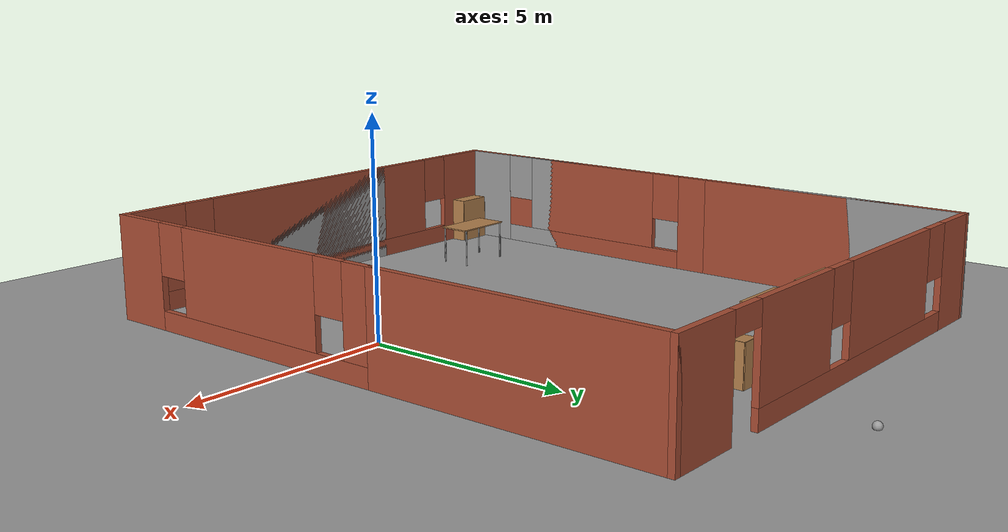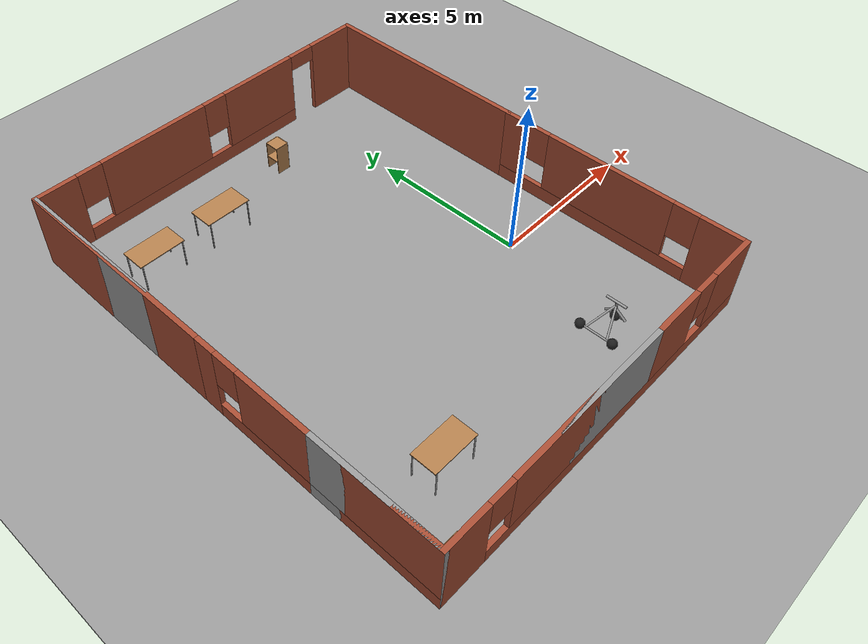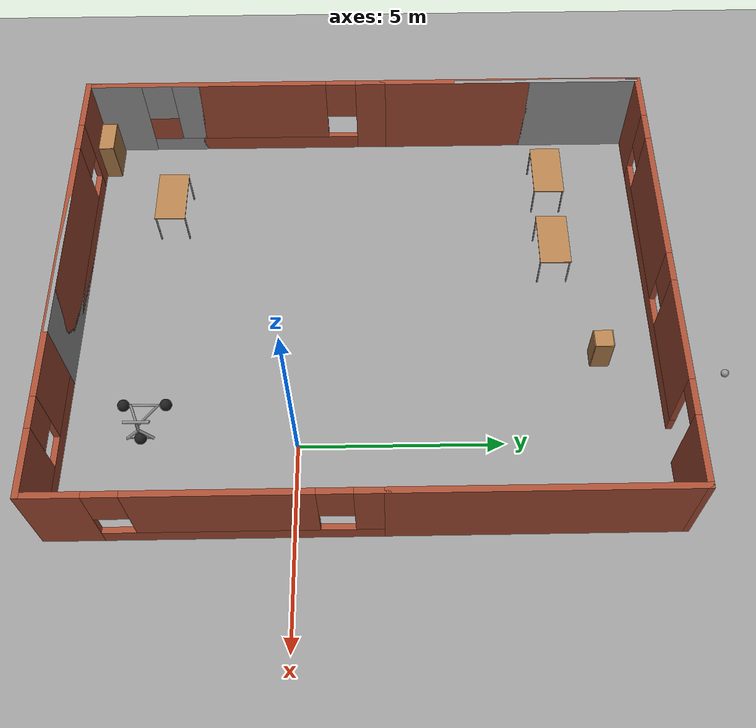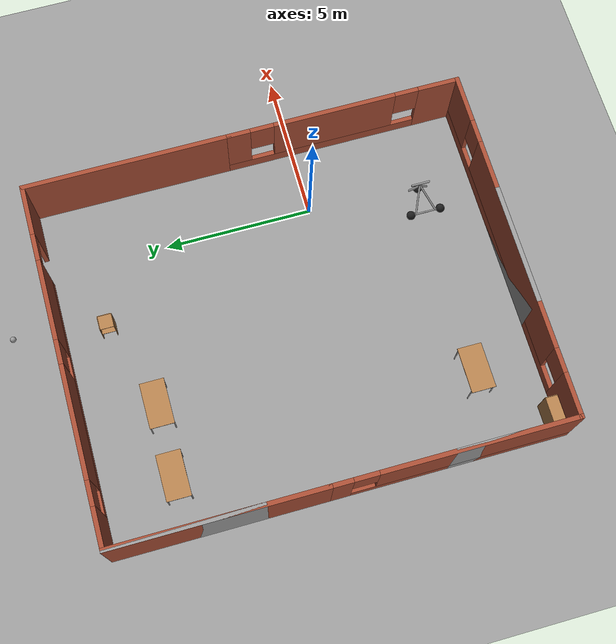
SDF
<sdf version="1.6">
 <world name="default">
  <plugin name="hello" filename="libhello.so"/>
  <light name="sun" type="directional">
   <pose>0 0 10 0 -0 0</pose>
   <diffuse>0.8 0.8 0.8 1</diffuse>
   <specular>0.2 0.2 0.2 1</specular>
   <attenuation>
    <range>1000</range>
    <constant>0.9</constant>
    <linear>0.01</linear>
    <quadratic>0.001</quadratic>
   </attenuation>
   <direction>-0.5 0.1 -0.9</direction>
  </light>
  <model name="ground_plane">
   <static>1</static>
   <link name="link">
    <collision name="collision">
     <geometry><plane><normal>0 0 1</normal><size>100 100</size></plane></geometry>
     <surface>
      <contact><collide_bitmask>65535</collide_bitmask></contact>
      <friction><ode><mu>100</mu><mu2>50</mu2></ode></friction>
     </surface>
    </collision>
    <visual name="visual">
     <cast_shadows>0</cast_shadows>
     <geometry><plane><normal>0 0 1</normal><size>100 100</size></plane></geometry>
     <material>
      <script><uri>file://media/materials/scripts/gazebo.material</uri><name>Gazebo/Grey</name></script>
     </material>
    </visual>
   </link>
  </model>
  <gravity>0 0 -9.8</gravity>
  <magnetic_field>6e-06 2.3e-05 -4.2e-05</magnetic_field>
  <atmosphere type="adiabatic"/>
  <physics name="default_physics" default="0" type="ode">
   <max_step_size>0.001</max_step_size>
   <real_time_factor>1</real_time_factor>
   <real_time_update_rate>1000</real_time_update_rate>
  </physics>
  <scene><ambient>0.4 0.4 0.4 1</ambient><background>0.7 0.7 0.7 1</background><shadows>1</shadows></scene>
  <spherical_coordinates>
   <surface_model>EARTH_WGS84</surface_model>
   <latitude_deg>0</latitude_deg>
   <longitude_deg>0</longitude_deg>
   <elevation>0</elevation>
   <heading_deg>0</heading_deg>
  </spherical_coordinates>
  <model name="Building">
   <pose>-3.67129 1.65628 0 0 -0 0</pose>
   <link name="Wall_0">
    <pose>-5.925 -3.425 0 0 0 -1.5708</pose>
    <visual name="Wall_0_Visual_0">
     <pose>-3.59975 0 1.25 0 -0 0</pose>
     <geometry><box><size>0.800507 0.15 2.5</size></box></geometry>
     <material>
      <script><uri>file://media/materials/scripts/gazebo.material</uri><name>Gazebo/Bricks</name></script>
      <ambient>1 1 1 1</ambient>
     </material>
     <meta><layer>0</layer></meta>
    </visual>
    <collision name="Wall_0_Collision_0">
     <geometry><box><size>0.800507 0.15 2.5</size></box></geometry>
     <pose>-3.59975 0 1.25 0 -0 0</pose>
    </collision>
    <visual name="Wall_0_Visual_1">
     <pose>0.400254 0 0.25 0 -0 0</pose>
     <geometry><box><size>7.19949 0.15 0.5</size></box></geometry>
     <material>
      <script><uri>file://media/materials/scripts/gazebo.material</uri><name>Gazebo/Bricks</name></script>
      <ambient>1 1 1 1</ambient>
     </material>
     <meta><layer>0</layer></meta>
    </visual>
    <collision name="Wall_0_Collision_1">
     <geometry><box><size>7.19949 0.15 0.5</size></box></geometry>
     <pose>0.400254 0 0.25 0 -0 0</pose>
    </collision>
    <visual name="Wall_0_Visual_2">
     <pose>0.800254 0 1.5 0 -0 0</pose>
     <geometry><box><size>6.39949 0.15 2</size></box></geometry>
     <material>
      <script><uri>file://media/materials/scripts/gazebo.material</uri><name>Gazebo/Bricks</name></script>
      <ambient>1 1 1 1</ambient>
     </material>
     <meta><layer>0</layer></meta>
    </visual>
    <collision name="Wall_0_Collision_2">
     <geometry><box><size>6.39949 0.15 2</size></box></geometry>
     <pose>0.800254 0 1.5 0 -0 0</pose>
    </collision>
    <visual name="Wall_0_Visual_3">
     <pose>-2.79949 0 1.9 0 -0 0</pose>
     <geometry><box><size>0.8 0.15 1.2</size></box></geometry>
     <material>
      <script><uri>file://media/materials/scripts/gazebo.material</uri><name>Gazebo/Bricks</name></script>
      <ambient>1 1 1 1</ambient>
     </material>
     <meta><layer>0</layer></meta>
    </visual>
    <collision name="Wall_0_Collision_3">
     <geometry><box><size>0.8 0.15 1.2</size></box></geometry>
     <pose>-2.79949 0 1.9 0 -0 0</pose>
    </collision>
   </link>
   <link name="Wall_1">
    <pose>0 -7.35 0 0 -0 0</pose>
    <visual name="Wall_1_Visual_0">
     <pose>-5.25471 0 1.25 0 -0 0</pose>
     <geometry><box><size>1.49059 0.15 2.5</size></box></geometry>
     <material>
      <script><uri>file://media/materials/scripts/gazebo.material</uri><name>Gazebo/Bricks</name></script>
      <ambient>1 1 1 1</ambient>
     </material>
     <meta><layer>0</layer></meta>
    </visual>
    <collision name="Wall_1_Collision_0">
     <geometry><box><size>1.49059 0.15 2.5</size></box></geometry>
     <pose>-5.25471 0 1.25 0 -0 0</pose>
    </collision>
    <visual name="Wall_1_Visual_1">
     <pose>0.745295 0 0.25 0 -0 0</pose>
     <geometry><box><size>10.5094 0.15 0.5</size></box></geometry>
     <material>
      <script><uri>file://media/materials/scripts/gazebo.material</uri><name>Gazebo/Bricks</name></script>
      <ambient>1 1 1 1</ambient>
     </material>
     <meta><layer>0</layer></meta>
    </visual>
    <collision name="Wall_1_Collision_1">
     <geometry><box><size>10.5094 0.15 0.5</size></box></geometry>
     <pose>0.745295 0 0.25 0 -0 0</pose>
    </collision>
    <visual name="Wall_1_Visual_2">
     <pose>-0.084684 0 1.5 0 -0 0</pose>
     <geometry><box><size>7.24945 0.15 2</size></box></geometry>
     <material>
      <script><uri>file://media/materials/scripts/gazebo.material</uri><name>Gazebo/Bricks</name></script>
      <ambient>1 1 1 1</ambient>
     </material>
     <meta><layer>0</layer></meta>
    </visual>
    <collision name="Wall_1_Collision_2">
     <geometry><box><size>7.24945 0.15 2</size></box></geometry>
     <pose>-0.084684 0 1.5 0 -0 0</pose>
    </collision>
    <visual name="Wall_1_Visual_3">
     <pose>5.17002 0 1.5 0 -0 0</pose>
     <geometry><box><size>1.65996 0.15 2</size></box></geometry>
     <material>
      <script><uri>file://media/materials/scripts/gazebo.material</uri><name>Gazebo/Bricks</name></script>
      <ambient>1 1 1 1</ambient>
     </material>
     <meta><layer>0</layer></meta>
    </visual>
    <collision name="Wall_1_Collision_3">
     <geometry><box><size>1.65996 0.15 2</size></box></geometry>
     <pose>5.17002 0 1.5 0 -0 0</pose>
    </collision>
    <visual name="Wall_1_Visual_4">
     <pose>-4.10941 0 1.9 0 -0 0</pose>
     <geometry><box><size>0.8 0.15 1.2</size></box></geometry>
     <material>
      <script><uri>file://media/materials/scripts/gazebo.material</uri><name>Gazebo/Bricks</name></script>
      <ambient>1 1 1 1</ambient>
     </material>
     <meta><layer>0</layer></meta>
    </visual>
    <collision name="Wall_1_Collision_4">
     <geometry><box><size>0.8 0.15 1.2</size></box></geometry>
     <pose>-4.10941 0 1.9 0 -0 0</pose>
    </collision>
    <visual name="Wall_1_Visual_5">
     <pose>3.94004 0 1.9 0 -0 0</pose>
     <geometry><box><size>0.8 0.15 1.2</size></box></geometry>
     <material>
      <script><uri>file://media/materials/scripts/gazebo.material</uri><name>Gazebo/Bricks</name></script>
      <ambient>1 1 1 1</ambient>
     </material>
     <meta><layer>0</layer></meta>
    </visual>
    <collision name="Wall_1_Collision_5">
     <geometry><box><size>0.8 0.15 1.2</size></box></geometry>
     <pose>3.94004 0 1.9 0 -0 0</pose>
    </collision>
   </link>
   <link name="Wall_16">
    <collision name="Wall_16_Collision">
     <geometry><box><size>7 0.15 2.5</size></box></geometry>
     <pose>0 0 1.25 0 -0 0</pose>
    </collision>
    <visual name="Wall_16_Visual">
     <pose>0 0 1.25 0 -0 0</pose>
     <geometry><box><size>7 0.15 2.5</size></box></geometry>
     <material>
      <script><uri>file://media/materials/scripts/gazebo.material</uri><name>Gazebo/Bricks</name></script>
      <ambient>1 1 1 1</ambient>
     </material>
     <meta><layer>0</layer></meta>
    </visual>
    <pose>-5.925 3.925 0 0 -0 1.5708</pose>
   </link>
   <link name="Wall_18">
    <collision name="Wall_18_Collision">
     <geometry><box><size>7 0.15 2.5</size></box></geometry>
     <pose>0 0 1.25 0 -0 0</pose>
    </collision>
    <visual name="Wall_18_Visual">
     <pose>0 0 1.25 0 -0 0</pose>
     <geometry><box><size>7 0.15 2.5</size></box></geometry>
     <material>
      <script><uri>file://media/materials/scripts/gazebo.material</uri><name>Gazebo/Bricks</name></script>
      <ambient>1 1 1 1</ambient>
     </material>
     <meta><layer>0</layer></meta>
    </visual>
    <pose>5.925 3.925 0 0 -0 1.5708</pose>
   </link>
   <link name="Wall_2">
    <pose>5.925 -3.425 0 0 -0 1.5708</pose>
    <visual name="Wall_2_Visual_0">
     <pose>-3.27914 0 1.25 0 -0 0</pose>
     <geometry><box><size>1.44172 0.15 2.5</size></box></geometry>
     <material>
      <script><uri>file://media/materials/scripts/gazebo.material</uri><name>Gazebo/Bricks</name></script>
      <ambient>1 1 1 1</ambient>
     </material>
     <meta><layer>0</layer></meta>
    </visual>
    <collision name="Wall_2_Collision_0">
     <geometry><box><size>1.44172 0.15 2.5</size></box></geometry>
     <pose>-3.27914 0 1.25 0 -0 0</pose>
    </collision>
    <visual name="Wall_2_Visual_1">
     <pose>0.720861 0 0.25 0 -0 0</pose>
     <geometry><box><size>6.55828 0.15 0.5</size></box></geometry>
     <material>
      <script><uri>file://media/materials/scripts/gazebo.material</uri><name>Gazebo/Bricks</name></script>
      <ambient>1 1 1 1</ambient>
     </material>
     <meta><layer>0</layer></meta>
    </visual>
    <collision name="Wall_2_Collision_1">
     <geometry><box><size>6.55828 0.15 0.5</size></box></geometry>
     <pose>0.720861 0 0.25 0 -0 0</pose>
    </collision>
    <visual name="Wall_2_Visual_2">
     <pose>0.320608 0 1.5 0 -0 0</pose>
     <geometry><box><size>4.15777 0.15 2</size></box></geometry>
     <material>
      <script><uri>file://media/materials/scripts/gazebo.material</uri><name>Gazebo/Bricks</name></script>
      <ambient>1 1 1 1</ambient>
     </material>
     <meta><layer>0</layer></meta>
    </visual>
    <collision name="Wall_2_Collision_2">
     <geometry><box><size>4.15777 0.15 2</size></box></geometry>
     <pose>0.320608 0 1.5 0 -0 0</pose>
    </collision>
    <visual name="Wall_2_Visual_3">
     <pose>3.59975 0 1.5 0 -0 0</pose>
     <geometry><box><size>0.800507 0.15 2</size></box></geometry>
     <material>
      <script><uri>file://media/materials/scripts/gazebo.material</uri><name>Gazebo/Bricks</name></script>
      <ambient>1 1 1 1</ambient>
     </material>
     <meta><layer>0</layer></meta>
    </visual>
    <collision name="Wall_2_Collision_3">
     <geometry><box><size>0.800507 0.15 2</size></box></geometry>
     <pose>3.59975 0 1.5 0 -0 0</pose>
    </collision>
    <visual name="Wall_2_Visual_4">
     <pose>-2.15828 0 1.9 0 -0 0</pose>
     <geometry><box><size>0.8 0.15 1.2</size></box></geometry>
     <material>
      <script><uri>file://media/materials/scripts/gazebo.material</uri><name>Gazebo/Bricks</name></script>
      <ambient>1 1 1 1</ambient>
     </material>
     <meta><layer>0</layer></meta>
    </visual>
    <collision name="Wall_2_Collision_4">
     <geometry><box><size>0.8 0.15 1.2</size></box></geometry>
     <pose>-2.15828 0 1.9 0 -0 0</pose>
    </collision>
    <visual name="Wall_2_Visual_5">
     <pose>2.79949 0 1.9 0 -0 0</pose>
     <geometry><box><size>0.8 0.15 1.2</size></box></geometry>
     <material>
      <script><uri>file://media/materials/scripts/gazebo.material</uri><name>Gazebo/Bricks</name></script>
      <ambient>1 1 1 1</ambient>
     </material>
     <meta><layer>0</layer></meta>
    </visual>
    <collision name="Wall_2_Collision_5">
     <geometry><box><size>0.8 0.15 1.2</size></box></geometry>
     <pose>2.79949 0 1.9 0 -0 0</pose>
    </collision>
   </link>
   <link name="Wall_20">
    <pose>0 7.35 0 0 -0 0</pose>
    <visual name="Wall_20_Visual_0">
     <pose>-5.31223 0 1.25 0 -0 0</pose>
     <geometry><box><size>1.37554 0.15 2.5</size></box></geometry>
     <material>
      <script><uri>file://media/materials/scripts/gazebo.material</uri><name>Gazebo/Bricks</name></script>
      <ambient>1 1 1 1</ambient>
     </material>
     <meta><layer>0</layer></meta>
    </visual>
    <collision name="Wall_20_Collision_0">
     <geometry><box><size>1.37554 0.15 2.5</size></box></geometry>
     <pose>-5.31223 0 1.25 0 -0 0</pose>
    </collision>
    <visual name="Wall_20_Visual_1">
     <pose>5.12315 0 1.25 0 -0 0</pose>
     <geometry><box><size>1.7537 0.15 2.5</size></box></geometry>
     <material>
      <script><uri>file://media/materials/scripts/gazebo.material</uri><name>Gazebo/Bricks</name></script>
      <ambient>1 1 1 1</ambient>
     </material>
     <meta><layer>0</layer></meta>
    </visual>
    <collision name="Wall_20_Collision_1">
     <geometry><box><size>1.7537 0.15 2.5</size></box></geometry>
     <pose>5.12315 0 1.25 0 -0 0</pose>
    </collision>
    <visual name="Wall_20_Visual_2">
     <pose>-0.639081 0 0.25 0 -0 0</pose>
     <geometry><box><size>7.97076 0.15 0.5</size></box></geometry>
     <material>
      <script><uri>file://media/materials/scripts/gazebo.material</uri><name>Gazebo/Bricks</name></script>
      <ambient>1 1 1 1</ambient>
     </material>
     <meta><layer>0</layer></meta>
    </visual>
    <collision name="Wall_20_Collision_2">
     <geometry><box><size>7.97076 0.15 0.5</size></box></geometry>
     <pose>-0.639081 0 0.25 0 -0 0</pose>
    </collision>
    <visual name="Wall_20_Visual_3">
     <pose>-1.99061 0 1.5 0 -0 0</pose>
     <geometry><box><size>3.6677 0.15 2</size></box></geometry>
     <material>
      <script><uri>file://media/materials/scripts/gazebo.material</uri><name>Gazebo/Bricks</name></script>
      <ambient>1 1 1 1</ambient>
     </material>
     <meta><layer>0</layer></meta>
    </visual>
    <collision name="Wall_20_Collision_3">
     <geometry><box><size>3.6677 0.15 2</size></box></geometry>
     <pose>-1.99061 0 1.5 0 -0 0</pose>
    </collision>
    <visual name="Wall_20_Visual_4">
     <pose>1.99477 0 1.5 0 -0 0</pose>
     <geometry><box><size>2.70305 0.15 2</size></box></geometry>
     <material>
      <script><uri>file://media/materials/scripts/gazebo.material</uri><name>Gazebo/Bricks</name></script>
      <ambient>1 1 1 1</ambient>
     </material>
     <meta><layer>0</layer></meta>
    </visual>
    <collision name="Wall_20_Collision_4">
     <geometry><box><size>2.70305 0.15 2</size></box></geometry>
     <pose>1.99477 0 1.5 0 -0 0</pose>
    </collision>
    <visual name="Wall_20_Visual_5">
     <pose>-4.22446 0 1.9 0 -0 0</pose>
     <geometry><box><size>0.8 0.15 1.2</size></box></geometry>
     <material>
      <script><uri>file://media/materials/scripts/gazebo.material</uri><name>Gazebo/Bricks</name></script>
      <ambient>1 1 1 1</ambient>
     </material>
     <meta><layer>0</layer></meta>
    </visual>
    <collision name="Wall_20_Collision_5">
     <geometry><box><size>0.8 0.15 1.2</size></box></geometry>
     <pose>-4.22446 0 1.9 0 -0 0</pose>
    </collision>
    <visual name="Wall_20_Visual_6">
     <pose>0.243243 0 1.9 0 -0 0</pose>
     <geometry><box><size>0.8 0.15 1.2</size></box></geometry>
     <material>
      <script><uri>file://media/materials/scripts/gazebo.material</uri><name>Gazebo/Bricks</name></script>
      <ambient>1 1 1 1</ambient>
     </material>
     <meta><layer>0</layer></meta>
    </visual>
    <collision name="Wall_20_Collision_6">
     <geometry><box><size>0.8 0.15 1.2</size></box></geometry>
     <pose>0.243243 0 1.9 0 -0 0</pose>
    </collision>
    <visual name="Wall_20_Visual_7">
     <pose>3.7963 0 2.25 0 -0 0</pose>
     <geometry><box><size>0.9 0.15 0.5</size></box></geometry>
     <material>
      <script><uri>file://media/materials/scripts/gazebo.material</uri><name>Gazebo/Bricks</name></script>
      <ambient>1 1 1 1</ambient>
     </material>
     <meta><layer>0</layer></meta>
    </visual>
    <collision name="Wall_20_Collision_7">
     <geometry><box><size>0.9 0.15 0.5</size></box></geometry>
     <pose>3.7963 0 2.25 0 -0 0</pose>
    </collision>
   </link>
   <link name="Wall_22">
    <collision name="Wall_22_Collision">
     <geometry><box><size>5 0.15 2.5</size></box></geometry>
     <pose>0 0 1.25 0 -0 0</pose>
    </collision>
    <visual name="Wall_22_Visual">
     <pose>0 0 1.25 0 -0 0</pose>
     <geometry><box><size>5 0.15 2.5</size></box></geometry>
     <material>
      <script><uri>file://media/materials/scripts/gazebo.material</uri><name>Gazebo/Grey</name></script>
      <ambient>1 1 1 1</ambient>
     </material>
     <meta><layer>0</layer></meta>
    </visual>
    <pose>-5.925 4.925 0 0 0 -1.5708</pose>
   </link>
   <link name="Wall_5">
    <pose>-5.925 -5.425 0 0 -0 1.5708</pose>
    <visual name="Wall_5_Visual_0">
     <pose>-1.25601 0 1.25 0 -0 0</pose>
     <geometry><box><size>1.48798 0.15 2.5</size></box></geometry>
     <material>
      <script><uri>file://media/materials/scripts/gazebo.material</uri><name>Gazebo/Grey</name></script>
      <ambient>1 1 1 1</ambient>
     </material>
     <meta><layer>0</layer></meta>
    </visual>
    <collision name="Wall_5_Collision_0">
     <geometry><box><size>1.48798 0.15 2.5</size></box></geometry>
     <pose>-1.25601 0 1.25 0 -0 0</pose>
    </collision>
    <visual name="Wall_5_Visual_1">
     <pose>0.743992 0 0.25 0 -0 0</pose>
     <geometry><box><size>2.51202 0.15 0.5</size></box></geometry>
     <material>
      <script><uri>file://media/materials/scripts/gazebo.material</uri><name>Gazebo/Grey</name></script>
      <ambient>1 1 1 1</ambient>
     </material>
     <meta><layer>0</layer></meta>
    </visual>
    <collision name="Wall_5_Collision_1">
     <geometry><box><size>2.51202 0.15 0.5</size></box></geometry>
     <pose>0.743992 0 0.25 0 -0 0</pose>
    </collision>
    <visual name="Wall_5_Visual_2">
     <pose>1.14399 0 1.5 0 -0 0</pose>
     <geometry><box><size>1.71202 0.15 2</size></box></geometry>
     <material>
      <script><uri>file://media/materials/scripts/gazebo.material</uri><name>Gazebo/Grey</name></script>
      <ambient>1 1 1 1</ambient>
     </material>
     <meta><layer>0</layer></meta>
    </visual>
    <collision name="Wall_5_Collision_2">
     <geometry><box><size>1.71202 0.15 2</size></box></geometry>
     <pose>1.14399 0 1.5 0 -0 0</pose>
    </collision>
    <visual name="Wall_5_Visual_3">
     <pose>-0.112016 0 1.9 0 -0 0</pose>
     <geometry><box><size>0.8 0.15 1.2</size></box></geometry>
     <material>
      <script><uri>file://media/materials/scripts/gazebo.material</uri><name>Gazebo/Grey</name></script>
      <ambient>1 1 1 1</ambient>
     </material>
     <meta><layer>0</layer></meta>
    </visual>
    <collision name="Wall_5_Collision_3">
     <geometry><box><size>0.8 0.15 1.2</size></box></geometry>
     <pose>-0.112016 0 1.9 0 -0 0</pose>
    </collision>
   </link>
   <link name="Wall_8">
    <collision name="Wall_8_Collision">
     <geometry><box><size>4 0.15 2.5</size></box></geometry>
     <pose>0 0 1.25 0 -0 0</pose>
    </collision>
    <visual name="Wall_8_Visual">
     <pose>0 0 1.25 0 -0 0</pose>
     <geometry><box><size>4 0.15 2.5</size></box></geometry>
     <material>
      <script><uri>file://media/materials/scripts/gazebo.material</uri><name>Gazebo/Grey</name></script>
      <ambient>1 1 1 1</ambient>
     </material>
     <meta><layer>0</layer></meta>
    </visual>
    <pose>-0.15 -7.35 0 0 -0 0</pose>
   </link>
   <static>1</static>
  </model>
  <model name="cabinet">
   <static>1</static>
   <link name="cabinet_bottom_plate">
    <inertial>
     <pose>0 0 -1 0 -0 0</pose>
     <inertia><ixx>2.05</ixx><ixy>0</ixy><ixz>0</ixz><iyy>2.05</iyy><iyz>0</iyz><izz>2.05</izz></inertia>
     <mass>25</mass>
    </inertial>
    <collision name="cabinet_bottom_plate_geom">
     <pose>0 0 0.01 0 -0 0</pose>
     <geometry><box><size>0.45 0.45 0.02</size></box></geometry>
    </collision>
    <visual name="cabinet_bottom_plate_geom_visual">
     <pose>0 0 0.01 0 -0 0</pose>
     <geometry><box><size>0.45 0.45 0.02</size></box></geometry>
     <material>
      <script><uri>file://media/materials/scripts/gazebo.material</uri><name>Gazebo/Wood</name></script>
     </material>
    </visual>
    <collision name="cabinet_bottom_plate_geom_cabinet_back_plate">
     <pose>0.235 0 0.51 0 -0 0</pose>
     <geometry><box><size>0.02 0.45 1.02</size></box></geometry>
    </collision>
    <visual name="cabinet_bottom_plate_geom_cabinet_back_plate_visual">
     <pose>0.235 0 0.51 0 -0 0</pose>
     <geometry><box><size>0.02 0.45 1.02</size></box></geometry>
     <material>
      <script><uri>file://media/materials/scripts/gazebo.material</uri><name>Gazebo/Wood</name></script>
     </material>
    </visual>
    <collision name="cabinet_bottom_plate_geom_cabinet_left_plate">
     <pose>0 0.235 0.51 0 -0 0</pose>
     <geometry><box><size>0.45 0.02 1.02</size></box></geometry>
    </collision>
    <visual name="cabinet_bottom_plate_geom_cabinet_left_plate_visual">
     <pose>0 0.235 0.51 0 -0 0</pose>
     <geometry><box><size>0.45 0.02 1.02</size></box></geometry>
     <material>
      <script><uri>file://media/materials/scripts/gazebo.material</uri><name>Gazebo/Wood</name></script>
     </material>
    </visual>
    <collision name="cabinet_bottom_plate_geom_cabinet_middle_plate">
     <pose>0 0 0.51 0 -0 0</pose>
     <geometry><box><size>0.45 0.45 0.02</size></box></geometry>
    </collision>
    <visual name="cabinet_bottom_plate_geom_cabinet_middle_plate_visual">
     <pose>0 0 0.51 0 -0 0</pose>
     <geometry><box><size>0.45 0.45 0.02</size></box></geometry>
     <material>
      <script><uri>file://media/materials/scripts/gazebo.material</uri><name>Gazebo/Wood</name></script>
     </material>
    </visual>
    <collision name="cabinet_bottom_plate_geom_cabinet_right_plate">
     <pose>0 -0.235 0.51 0 -0 0</pose>
     <geometry><box><size>0.45 0.02 1.02</size></box></geometry>
    </collision>
    <visual name="cabinet_bottom_plate_geom_cabinet_right_plate_visual">
     <pose>0 -0.235 0.51 0 -0 0</pose>
     <geometry><box><size>0.45 0.02 1.02</size></box></geometry>
     <material>
      <script><uri>file://media/materials/scripts/gazebo.material</uri><name>Gazebo/Wood</name></script>
     </material>
    </visual>
    <collision name="cabinet_bottom_plate_geom_cabinet_top_plate">
     <pose>0 0 1.01 0 -0 0</pose>
     <geometry><box><size>0.45 0.45 0.02</size></box></geometry>
    </collision>
    <visual name="cabinet_bottom_plate_geom_cabinet_top_plate_visual">
     <pose>0 0 1.01 0 -0 0</pose>
     <geometry><box><size>0.45 0.45 0.02</size></box></geometry>
     <material>
      <script><uri>file://media/materials/scripts/gazebo.material</uri><name>Gazebo/Wood</name></script>
     </material>
    </visual>
   </link>
   <pose>-2.35508 7.51328 0 0 -0 0</pose>
  </model>
  <model name="table">
   <static>1</static>
   <link name="link">
    <collision name="surface">
     <pose>0 0 1 0 -0 0</pose>
     <geometry><box><size>1.5 0.8 0.03</size></box></geometry>
     <surface><friction><ode><mu>0.6</mu><mu2>0.6</mu2></ode></friction></surface>
    </collision>
    <visual name="visual1">
     <pose>0 0 1 0 -0 0</pose>
     <geometry><box><size>1.5 0.8 0.03</size></box></geometry>
     <material>
      <script><uri>file://media/materials/scripts/gazebo.material</uri><name>Gazebo/Wood</name></script>
     </material>
    </visual>
    <collision name="front_left_leg">
     <pose>0.68 0.38 0.5 0 -0 0</pose>
     <geometry><cylinder><radius>0.02</radius><length>1</length></cylinder></geometry>
    </collision>
    <visual name="front_left_leg">
     <pose>0.68 0.38 0.5 0 -0 0</pose>
     <geometry><cylinder><radius>0.02</radius><length>1</length></cylinder></geometry>
     <material>
      <script><uri>file://media/materials/scripts/gazebo.material</uri><name>Gazebo/Grey</name></script>
     </material>
    </visual>
    <collision name="front_right_leg">
     <pose>0.68 -0.38 0.5 0 -0 0</pose>
     <geometry><cylinder><radius>0.02</radius><length>1</length></cylinder></geometry>
    </collision>
    <visual name="front_right_leg">
     <pose>0.68 -0.38 0.5 0 -0 0</pose>
     <geometry><cylinder><radius>0.02</radius><length>1</length></cylinder></geometry>
     <material>
      <script><uri>file://media/materials/scripts/gazebo.material</uri><name>Gazebo/Grey</name></script>
     </material>
    </visual>
    <collision name="back_right_leg">
     <pose>-0.68 -0.38 0.5 0 -0 0</pose>
     <geometry><cylinder><radius>0.02</radius><length>1</length></cylinder></geometry>
    </collision>
    <visual name="back_right_leg">
     <pose>-0.68 -0.38 0.5 0 -0 0</pose>
     <geometry><cylinder><radius>0.02</radius><length>1</length></cylinder></geometry>
     <material>
      <script><uri>file://media/materials/scripts/gazebo.material</uri><name>Gazebo/Grey</name></script>
     </material>
    </visual>
    <collision name="back_left_leg">
     <pose>-0.68 0.38 0.5 0 -0 0</pose>
     <geometry><cylinder><radius>0.02</radius><length>1</length></cylinder></geometry>
    </collision>
    <visual name="back_left_leg">
     <pose>-0.68 0.38 0.5 0 -0 0</pose>
     <geometry><cylinder><radius>0.02</radius><length>1</length></cylinder></geometry>
     <material>
      <script><uri>file://media/materials/scripts/gazebo.material</uri><name>Gazebo/Grey</name></script>
     </material>
    </visual>
   </link>
   <pose>-7.75162 6.582 0 0 -0 0</pose>
  </model>
  <model name="table_0">
   <static>1</static>
   <link name="link">
    <collision name="surface">
     <pose>0 0 1 0 -0 0</pose>
     <geometry><box><size>1.5 0.8 0.03</size></box></geometry>
     <surface><friction><ode><mu>0.6</mu><mu2>0.6</mu2></ode></friction></surface>
    </collision>
    <visual name="visual1">
     <pose>0 0 1 0 -0 0</pose>
     <geometry><box><size>1.5 0.8 0.03</size></box></geometry>
     <material>
      <script><uri>file://media/materials/scripts/gazebo.material</uri><name>Gazebo/Wood</name></script>
     </material>
    </visual>
    <collision name="front_left_leg">
     <pose>0.68 0.38 0.5 0 -0 0</pose>
     <geometry><cylinder><radius>0.02</radius><length>1</length></cylinder></geometry>
    </collision>
    <visual name="front_left_leg">
     <pose>0.68 0.38 0.5 0 -0 0</pose>
     <geometry><cylinder><radius>0.02</radius><length>1</length></cylinder></geometry>
     <material>
      <script><uri>file://media/materials/scripts/gazebo.material</uri><name>Gazebo/Grey</name></script>
     </material>
    </visual>
    <collision name="front_right_leg">
     <pose>0.68 -0.38 0.5 0 -0 0</pose>
     <geometry><cylinder><radius>0.02</radius><length>1</length></cylinder></geometry>
    </collision>
    <visual name="front_right_leg">
     <pose>0.68 -0.38 0.5 0 -0 0</pose>
     <geometry><cylinder><radius>0.02</radius><length>1</length></cylinder></geometry>
     <material>
      <script><uri>file://media/materials/scripts/gazebo.material</uri><name>Gazebo/Grey</name></script>
     </material>
    </visual>
    <collision name="back_right_leg">
     <pose>-0.68 -0.38 0.5 0 -0 0</pose>
     <geometry><cylinder><radius>0.02</radius><length>1</length></cylinder></geometry>
    </collision>
    <visual name="back_right_leg">
     <pose>-0.68 -0.38 0.5 0 -0 0</pose>
     <geometry><cylinder><radius>0.02</radius><length>1</length></cylinder></geometry>
     <material>
      <script><uri>file://media/materials/scripts/gazebo.material</uri><name>Gazebo/Grey</name></script>
     </material>
    </visual>
    <collision name="back_left_leg">
     <pose>-0.68 0.38 0.5 0 -0 0</pose>
     <geometry><cylinder><radius>0.02</radius><length>1</length></cylinder></geometry>
    </collision>
    <visual name="back_left_leg">
     <pose>-0.68 0.38 0.5 0 -0 0</pose>
     <geometry><cylinder><radius>0.02</radius><length>1</length></cylinder></geometry>
     <material>
      <script><uri>file://media/materials/scripts/gazebo.material</uri><name>Gazebo/Grey</name></script>
     </material>
    </visual>
   </link>
   <pose>-5.41132 6.5482 0 0 -0 0</pose>
  </model>
  <model name="table_clone">
   <static>1</static>
   <link name="link">
    <collision name="surface">
     <pose>0 0 1 0 -0 0</pose>
     <geometry><box><size>1.5 0.8 0.03</size></box></geometry>
     <surface><friction><ode><mu>0.6</mu><mu2>0.6</mu2></ode></friction></surface>
    </collision>
    <visual name="visual1">
     <pose>0 0 1 0 -0 0</pose>
     <geometry><box><size>1.5 0.8 0.03</size></box></geometry>
     <material>
      <script><uri>file://media/materials/scripts/gazebo.material</uri><name>Gazebo/Wood</name></script>
     </material>
    </visual>
    <collision name="front_left_leg">
     <pose>0.68 0.38 0.5 0 -0 0</pose>
     <geometry><cylinder><radius>0.02</radius><length>1</length></cylinder></geometry>
    </collision>
    <visual name="front_left_leg">
     <pose>0.68 0.38 0.5 0 -0 0</pose>
     <geometry><cylinder><radius>0.02</radius><length>1</length></cylinder></geometry>
     <material>
      <script><uri>file://media/materials/scripts/gazebo.material</uri><name>Gazebo/Grey</name></script>
     </material>
    </visual>
    <collision name="front_right_leg">
     <pose>0.68 -0.38 0.5 0 -0 0</pose>
     <geometry><cylinder><radius>0.02</radius><length>1</length></cylinder></geometry>
    </collision>
    <visual name="front_right_leg">
     <pose>0.68 -0.38 0.5 0 -0 0</pose>
     <geometry><cylinder><radius>0.02</radius><length>1</length></cylinder></geometry>
     <material>
      <script><uri>file://media/materials/scripts/gazebo.material</uri><name>Gazebo/Grey</name></script>
     </material>
    </visual>
    <collision name="back_right_leg">
     <pose>-0.68 -0.38 0.5 0 -0 0</pose>
     <geometry><cylinder><radius>0.02</radius><length>1</length></cylinder></geometry>
    </collision>
    <visual name="back_right_leg">
     <pose>-0.68 -0.38 0.5 0 -0 0</pose>
     <geometry><cylinder><radius>0.02</radius><length>1</length></cylinder></geometry>
     <material>
      <script><uri>file://media/materials/scripts/gazebo.material</uri><name>Gazebo/Grey</name></script>
     </material>
    </visual>
    <collision name="back_left_leg">
     <pose>-0.68 0.38 0.5 0 -0 0</pose>
     <geometry><cylinder><radius>0.02</radius><length>1</length></cylinder></geometry>
    </collision>
    <visual name="back_left_leg">
     <pose>-0.68 0.38 0.5 0 -0 0</pose>
     <geometry><cylinder><radius>0.02</radius><length>1</length></cylinder></geometry>
     <material>
      <script><uri>file://media/materials/scripts/gazebo.material</uri><name>Gazebo/Grey</name></script>
     </material>
    </visual>
   </link>
   <pose>-6.99677 -3.49484 0 0 -0 0</pose>
  </model>
  <model name="ground_plane_0">
   <static>1</static>
   <link name="link">
    <collision name="collision">
     <geometry><plane><normal>0 0 1</normal><size>100 100</size></plane></geometry>
     <surface><friction><ode><mu>100</mu><mu2>50</mu2></ode></friction></surface>
    </collision>
    <visual name="visual">
     <cast_shadows>0</cast_shadows>
     <geometry><plane><normal>0 0 1</normal><size>100 100</size></plane></geometry>
     <material>
      <script><uri>file://media/materials/scripts/gazebo.material</uri><name>Gazebo/Grey</name></script>
     </material>
    </visual>
   </link>
   <pose>-1.72324 2.62968 0 0 -0 0</pose>
  </model>
  <model name="my_ball">
   <link name="link_0">
    <inertial>
     <mass>1</mass>
     <inertia><ixx>0.1</ixx><ixy>0</ixy><ixz>0</ixz><iyy>0.1</iyy><iyz>0</iyz><izz>0.1</izz></inertia>
    </inertial>
    <visual name="visual">
     <geometry><sphere><radius>0.1</radius></sphere></geometry>
     <material>
      <lighting>1</lighting>
      <script><uri>file://media/materials/scripts/gazebo.material</uri><name>Gazebo/Grey</name></script>
      <shader type="pixel"><normal_map>__default__</normal_map></shader>
      <ambient>1 1 1 1</ambient>
      <diffuse>1 1 1 1</diffuse>
      <specular>1 1 1 1</specular>
      <emissive>1 1 1 1</emissive>
     </material>
    </visual>
    <collision name="collision">
     <geometry><sphere><radius>0.1</radius></sphere></geometry>
     <surface>
      <friction>
       <ode><mu>1</mu><mu2>1</mu2><fdir1>0 0 0</fdir1><slip1>0</slip1><slip2>0</slip2></ode>
       <torsional>
        <coefficient>1</coefficient>
        <patch_radius>0</patch_radius>
        <surface_radius>0</surface_radius>
        <use_patch_radius>1</use_patch_radius>
        <ode><slip>0</slip></ode>
       </torsional>
      </friction>
      <bounce><restitution_coefficient>0</restitution_coefficient><threshold>1e+06</threshold></bounce>
      <contact>
       <collide_without_contact>0</collide_without_contact>
       <collide_without_contact_bitmask>1</collide_without_contact_bitmask>
       <collide_bitmask>1</collide_bitmask>
       <ode>
        <soft_cfm>0</soft_cfm>
        <soft_erp>0.2</soft_erp>
        <kp>1e+13</kp>
        <kd>1</kd>
        <max_vel>0.01</max_vel>
        <min_depth>0</min_depth>
       </ode>
       <bullet>
        <split_impulse>1</split_impulse>
        <split_impulse_penetration_threshold>-0.01</split_impulse_penetration_threshold>
        <soft_cfm>0</soft_cfm>
        <soft_erp>0.2</soft_erp>
        <kp>1e+13</kp>
        <kd>1</kd>
       </bullet>
      </contact>
     </surface>
    </collision>
   </link>
   <static>0</static>
   <pose>-1.83136 10.634 0.099991 0 -0 0</pose>
  </model>
  <plugin name="collision_map_creator" filename="libcollision_map_creator.so"/>
  <model name="trisphere_cycle">
   <link name="frame">
    <pose>-0.408559 0 0.385023 0 -0.522021 0</pose>
    <inertial>
     <mass>10</mass>
     <inertia><ixx>0.228</ixx><iyy>0.743521</iyy><izz>0.965521</izz><ixy>0</ixy><ixz>0</ixz><iyz>0</iyz></inertia>
    </inertial>
    <collision name="axle_collision">
     <pose>-0.471335 0 0 1.5708 -0 0</pose>
     <geometry><cylinder><length>1.03923</length><radius>0.03</radius></cylinder></geometry>
    </collision>
    <visual name="axle_visual">
     <pose>-0.471335 0 0 1.5708 -0 0</pose>
     <geometry><cylinder><length>1.03923</length><radius>0.03</radius></cylinder></geometry>
     <material>
      <script><uri>file://media/materials/scripts/gazebo.material</uri><name>Gazebo/Grey</name></script>
     </material>
    </visual>
    <collision name="frame_left_collision">
     <pose>0 0.171552 0 -2.79253 1.57079 3.14159</pose>
     <geometry><cylinder><length>1.00317</length><radius>0.03</radius></cylinder></geometry>
    </collision>
    <visual name="frame_left_visual">
     <pose>0 0.171552 0 -2.79253 1.57079 3.14159</pose>
     <geometry><cylinder><length>1.00317</length><radius>0.03</radius></cylinder></geometry>
     <material>
      <script><uri>file://media/materials/scripts/gazebo.material</uri><name>Gazebo/Grey</name></script>
     </material>
    </visual>
    <collision name="frame_right_collision">
     <pose>0 -0.171552 0 2.79253 1.57079 -3.14159</pose>
     <geometry><cylinder><length>1.00317</length><radius>0.03</radius></cylinder></geometry>
    </collision>
    <visual name="frame_right_visual">
     <pose>0 -0.171552 0 2.79253 1.57079 -3.14159</pose>
     <geometry><cylinder><length>1.00317</length><radius>0.03</radius></cylinder></geometry>
     <material>
      <script><uri>file://media/materials/scripts/gazebo.material</uri><name>Gazebo/Grey</name></script>
     </material>
    </visual>
   </link>
   <link name="fork">
    <pose>0.041441 0 0.385023 0 -0.174533 0</pose>
    <inertial>
     <mass>3</mass>
     <inertia>
      <ixx>0.158203</ixx>
      <iyy>0.0583594</iyy>
      <izz>0.102656</izz>
      <ixy>0</ixy>
      <ixz>0</ixz>
      <iyz>0</iyz>
     </inertia>
    </inertial>
    <collision name="handlebars_collision">
     <pose>0 0 0.397748 1.5708 -0 0</pose>
     <geometry><cylinder><length>0.636396</length><radius>0.0375</radius></cylinder></geometry>
    </collision>
    <visual name="handlebars_visual">
     <pose>0 0 0.397748 1.5708 -0 0</pose>
     <geometry><cylinder><length>0.636396</length><radius>0.0375</radius></cylinder></geometry>
     <material>
      <script><uri>file://media/materials/scripts/gazebo.material</uri><name>Gazebo/Grey</name></script>
     </material>
    </visual>
    <collision name="headtube_collision">
     <pose>0 0 0.238649 0 -0 0</pose>
     <geometry><cylinder><length>0.318198</length><radius>0.0375</radius></cylinder></geometry>
    </collision>
    <visual name="headtube_visual">
     <pose>0 0 0.238649 0 -0 0</pose>
     <geometry><cylinder><length>0.318198</length><radius>0.0375</radius></cylinder></geometry>
     <material>
      <script><uri>file://media/materials/scripts/gazebo.material</uri><name>Gazebo/Grey</name></script>
     </material>
    </visual>
    <collision name="spindle_collision">
     <pose>0 0 -0.238649 1.5708 -0 0</pose>
     <geometry><cylinder><length>0.636396</length><radius>0.015</radius></cylinder></geometry>
    </collision>
    <visual name="spindle_visual">
     <pose>0 0 -0.238649 1.5708 -0 0</pose>
     <geometry><cylinder><length>0.636396</length><radius>0.015</radius></cylinder></geometry>
     <material>
      <script><uri>file://media/materials/scripts/gazebo.material</uri><name>Gazebo/Grey</name></script>
     </material>
    </visual>
    <collision name="fork_left_collision">
     <pose>0 0.159099 -0.07955 0.785398 -0 0</pose>
     <geometry><cylinder><length>0.45</length><radius>0.0375</radius></cylinder></geometry>
    </collision>
    <visual name="fork_left_visual">
     <pose>0 0.159099 -0.07955 0.785398 -0 0</pose>
     <geometry><cylinder><length>0.45</length><radius>0.0375</radius></cylinder></geometry>
     <material>
      <script><uri>file://media/materials/scripts/gazebo.material</uri><name>Gazebo/Grey</name></script>
     </material>
    </visual>
    <collision name="fork_right_collision">
     <pose>0 -0.159099 -0.07955 -0.785398 0 0</pose>
     <geometry><cylinder><length>0.45</length><radius>0.0375</radius></cylinder></geometry>
    </collision>
    <visual name="fork_right_visual">
     <pose>0 -0.159099 -0.07955 -0.785398 0 0</pose>
     <geometry><cylinder><length>0.45</length><radius>0.0375</radius></cylinder></geometry>
     <material>
      <script><uri>file://media/materials/scripts/gazebo.material</uri><name>Gazebo/Grey</name></script>
     </material>
    </visual>
   </link>
   <link name="wheel_front">
    <pose>0.082882 0 0.15 0 -0 0</pose>
    <inertial>
     <mass>0.5</mass>
     <inertia><ixx>0.0045</ixx><iyy>0.0045</iyy><izz>0.0045</izz><ixy>0</ixy><ixz>0</ixz><iyz>0</iyz></inertia>
    </inertial>
    <collision name="collision">
     <geometry><sphere><radius>0.15</radius></sphere></geometry>
     <surface><contact><ode><kp>1e+08</kp><kd>1</kd><min_depth>0.0005</min_depth></ode></contact></surface>
    </collision>
    <visual name="visual">
     <geometry><sphere><radius>0.15</radius></sphere></geometry>
     <material>
      <script><uri>file://media/materials/scripts/gazebo.material</uri><name>Gazebo/Black</name></script>
     </material>
    </visual>
   </link>
   <joint name="wheel_front_steer" type="revolute">
    <parent>frame</parent>
    <child>fork</child>
    <axis>
     <xyz>0 0 1</xyz>
     <limit><lower>-0.959931</lower><upper>0.959931</upper></limit>
     <use_parent_model_frame>0</use_parent_model_frame>
     <dynamics><spring_reference>0</spring_reference><spring_stiffness>0</spring_stiffness></dynamics>
    </axis>
   </joint>
   <joint name="wheel_front_spin" type="revolute">
    <parent>fork</parent>
    <child>wheel_front</child>
    <axis>
     <xyz>0 1 0</xyz>
     <use_parent_model_frame>0</use_parent_model_frame>
     <limit><lower>-1e+16</lower><upper>1e+16</upper></limit>
     <dynamics><spring_reference>0</spring_reference><spring_stiffness>0</spring_stiffness></dynamics>
    </axis>
   </joint>
   <link name="wheel_rear_left">
    <pose>-0.817118 0.519615 0.15 0 -0 0</pose>
    <inertial>
     <mass>0.5</mass>
     <inertia><ixx>0.0045</ixx><iyy>0.0045</iyy><izz>0.0045</izz><ixy>0</ixy><ixz>0</ixz><iyz>0</iyz></inertia>
    </inertial>
    <collision name="collision">
     <geometry><sphere><radius>0.15</radius></sphere></geometry>
     <surface><contact><ode><kp>1e+08</kp><kd>1</kd><min_depth>0.0005</min_depth></ode></contact></surface>
    </collision>
    <visual name="visual">
     <geometry><sphere><radius>0.15</radius></sphere></geometry>
     <material>
      <script><uri>file://media/materials/scripts/gazebo.material</uri><name>Gazebo/Black</name></script>
     </material>
    </visual>
   </link>
   <joint name="wheel_rear_left_spin" type="revolute">
    <parent>frame</parent>
    <child>wheel_rear_left</child>
    <axis>
     <xyz>0 1 0</xyz>
     <use_parent_model_frame>0</use_parent_model_frame>
     <limit><lower>-1e+16</lower><upper>1e+16</upper></limit>
     <dynamics><spring_reference>0</spring_reference><spring_stiffness>0</spring_stiffness></dynamics>
    </axis>
   </joint>
   <link name="wheel_rear_right">
    <pose>-0.817118 -0.519615 0.15 0 -0 0</pose>
    <inertial>
     <mass>0.5</mass>
     <inertia><ixx>0.0045</ixx><iyy>0.0045</iyy><izz>0.0045</izz><ixy>0</ixy><ixz>0</ixz><iyz>0</iyz></inertia>
    </inertial>
    <collision name="collision">
     <geometry><sphere><radius>0.15</radius></sphere></geometry>
     <surface><contact><ode><kp>1e+08</kp><kd>1</kd><min_depth>0.0005</min_depth></ode></contact></surface>
    </collision>
    <visual name="visual">
     <geometry><sphere><radius>0.15</radius></sphere></geometry>
     <material>
      <script><uri>file://media/materials/scripts/gazebo.material</uri><name>Gazebo/Black</name></script>
     </material>
    </visual>
   </link>
   <joint name="wheel_rear_right_spin" type="revolute">
    <parent>frame</parent>
    <child>wheel_rear_right</child>
    <axis>
     <xyz>0 1 0</xyz>
     <use_parent_model_frame>0</use_parent_model_frame>
     <limit><lower>-1e+16</lower><upper>1e+16</upper></limit>
     <dynamics><spring_reference>0</spring_reference><spring_stiffness>0</spring_stiffness></dynamics>
    </axis>
   </joint>
   <pose>-0.31598 -3.78731 -5e-06 -4e-06 -3e-06 7.3e-05</pose>
  </model>
  <model name="bookshelf">
   <static>1</static>
   <link name="link">
    <inertial><mass>1</mass></inertial>
    <collision name="back">
     <pose>0 0.005 0.6 0 -0 0</pose>
     <geometry><box><size>0.9 0.01 1.2</size></box></geometry>
    </collision>
    <visual name="visual1">
     <pose>0 0.005 0.6 0 -0 0</pose>
     <geometry><box><size>0.9 0.01 1.2</size></box></geometry>
     <material>
      <script><uri>file://media/materials/scripts/gazebo.material</uri><name>Gazebo/Wood</name></script>
     </material>
    </visual>
    <collision name="left_side">
     <pose>0.45 -0.195 0.6 0 -0 0</pose>
     <geometry><box><size>0.02 0.4 1.2</size></box></geometry>
    </collision>
    <visual name="visual2">
     <pose>0.45 -0.195 0.6 0 -0 0</pose>
     <geometry><box><size>0.02 0.4 1.2</size></box></geometry>
     <material>
      <script><uri>file://media/materials/scripts/gazebo.material</uri><name>Gazebo/Wood</name></script>
     </material>
    </visual>
    <collision name="right_side">
     <pose>-0.45 -0.195 0.6 0 -0 0</pose>
     <geometry><box><size>0.02 0.4 1.2</size></box></geometry>
    </collision>
    <visual name="visual3">
     <pose>-0.45 -0.195 0.6 0 -0 0</pose>
     <geometry><box><size>0.02 0.4 1.2</size></box></geometry>
     <material>
      <script><uri>file://media/materials/scripts/gazebo.material</uri><name>Gazebo/Wood</name></script>
     </material>
    </visual>
    <collision name="bottom">
     <pose>0 -0.195 0.03 0 -0 0</pose>
     <geometry><box><size>0.88 0.4 0.06</size></box></geometry>
    </collision>
    <visual name="visual4">
     <pose>0 -0.195 0.03 0 -0 0</pose>
     <geometry><box><size>0.88 0.4 0.06</size></box></geometry>
     <material>
      <script><uri>file://media/materials/scripts/gazebo.material</uri><name>Gazebo/Wood</name></script>
     </material>
    </visual>
    <collision name="top">
     <pose>0 -0.195 1.19 0 -0 0</pose>
     <geometry><box><size>0.88 0.4 0.02</size></box></geometry>
    </collision>
    <visual name="visual5">
     <pose>0 -0.195 1.19 0 -0 0</pose>
     <geometry><box><size>0.88 0.4 0.02</size></box></geometry>
     <material>
      <script><uri>file://media/materials/scripts/gazebo.material</uri><name>Gazebo/Wood</name></script>
     </material>
    </visual>
    <collision name="low_shelf">
     <pose>0 -0.195 0.43 0 -0 0</pose>
     <geometry><box><size>0.88 0.4 0.02</size></box></geometry>
    </collision>
    <visual name="visual6">
     <pose>0 -0.195 0.43 0 -0 0</pose>
     <geometry><box><size>0.88 0.4 0.02</size></box></geometry>
     <material>
      <script><uri>file://media/materials/scripts/gazebo.material</uri><name>Gazebo/Wood</name></script>
     </material>
    </visual>
    <collision name="high_shelf">
     <pose>0 -0.195 0.8 0 -0 0</pose>
     <geometry><box><size>0.88 0.4 0.02</size></box></geometry>
    </collision>
    <visual name="visual7">
     <pose>0 -0.195 0.8 0 -0 0</pose>
     <geometry><box><size>0.88 0.4 0.02</size></box></geometry>
     <material>
      <script><uri>file://media/materials/scripts/gazebo.material</uri><name>Gazebo/Wood</name></script>
     </material>
    </visual>
   </link>
   <pose>-8.9915 -5.20782 0 0 -0 0</pose>
  </model>
  <plugin filename="libcollision_map_creator.so" name="collision_map_creator"/>
 </world>
</sdf>
